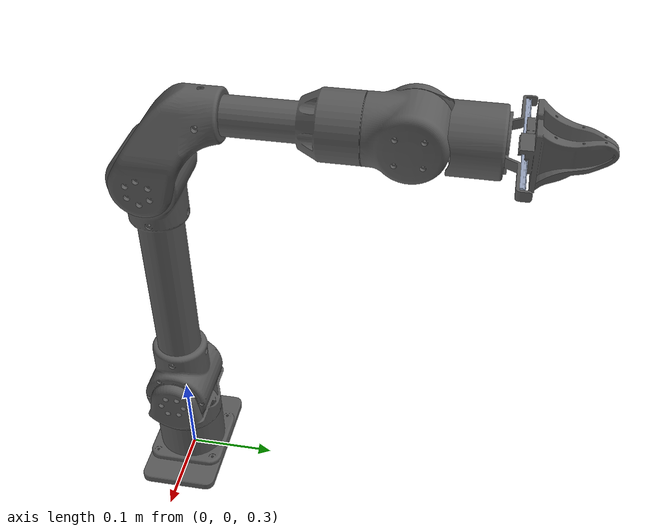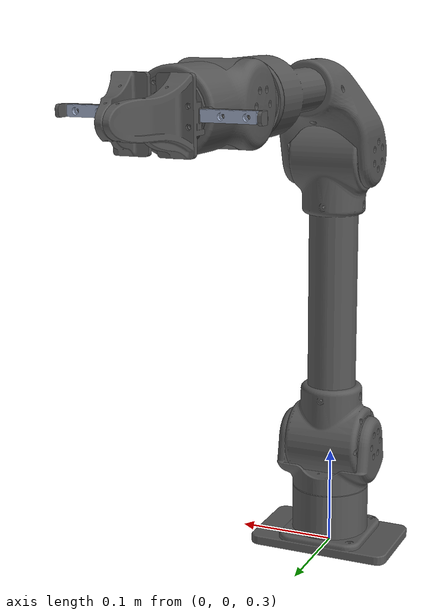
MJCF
<mujoco model="dm_arm">
  <compiler angle="radian" meshdir="../meshes" autolimits="true"/>

  <!-- Simulation settings -->
  <option gravity="0 0 -9.81" timestep="0.002" integrator="RK4"/>

  <!-- Common defaults to reduce repetition -->
  <default>
    <!-- Visual-only mesh: does not participate in collision -->
    <default class="visual_mesh">
      <geom type="mesh" contype="0" conaffinity="0" mass="0" density="0"/>
    </default>

    <!-- Collision mesh: participates in collision, kept transparent -->
    <default class="collision_mesh">
      <geom type="mesh" rgba="0 0 0 0" contype="1" conaffinity="1" mass="0" density="0"/>
    </default>

    <!-- Common hinge joint damping/armature baseline; override per joint as needed -->
    <default class="arm_hinge">
      <joint type="hinge" limited="true" range="-3.14 3.14"/>
    </default>
  </default>

  <asset>
    <!-- Robot meshes (STL). Keep names stable for geom references. -->
    <mesh name="base_link"     file="base_link.STL"/>
    <mesh name="link1"         file="link1.STL"/>
    <mesh name="link2"         file="link2.STL"/>
    <mesh name="link3"         file="link3.STL"/>
    <mesh name="link4"         file="link4.STL"/>
    <mesh name="link5"         file="link5.STL"/>
    <mesh name="link6"         file="link6.STL"/>
    <mesh name="dm_hand"       file="dm_hand.STL"/>
    <mesh name="dm_left_hand"  file="dm_left_hand.STL"/>
    <mesh name="dm_right_hand" file="dm_right_hand.STL"/>
  </asset>

  <worldbody>

    <!-- Base -->
    <body name="base_link" pos="0.0 0 0.3" quat="0 0 0 -1" >
      <inertial pos="0 0 0" mass="2.5" diaginertia="0.020 0.020 0.020"/>

      <geom class="visual_mesh"   mesh="base_link" rgba="0.35 0.35 0.35 1"/>
      <geom class="collision_mesh" name="col_base_link" mesh="base_link"/>

      <!-- Link1 -->
      <body name="link1" pos="0 0 0.065" quat="0.5 0.5 -0.5 -0.5">
        <inertial pos="0 0 0" mass="1.2" diaginertia="0.010 0.010 0.010"/>

        <joint class="arm_hinge" name="joint1" axis="0 1 0"
               damping="2" armature="0.01"/>

        <geom class="visual_mesh"    mesh="link1" rgba="0.35 0.35 0.35 1"/>

        <!-- Link2 -->
        <body name="link2" pos="0 0.05 0" quat="0.7071067811865462 0 0.7071067811865488 0">
          <inertial pos="0 0 0" mass="1.0" diaginertia="0.008 0.008 0.008"/>

          <joint class="arm_hinge" name="joint2" axis="1 0 0"
                 damping="2" armature="0.01"/>

          <geom class="visual_mesh"    mesh="link2" rgba="0.35 0.35 0.35 1"/>
          <geom class="collision_mesh" name="col_link2" mesh="link2"/>

          <!-- Link3 -->
          <body name="link3" pos="0 0.3 0"
                quat="5.26835673519653e-09 0.7071067811865462 5.268356735196549e-09 -0.7071067811865488">
            <inertial pos="0 0 0" mass="0.8" diaginertia="0.006 0.006 0.006"/>

            <joint class="arm_hinge" name="joint3" axis="0 0 -1"
                   damping="1.5" armature="0.008"/>

            <geom class="visual_mesh"    mesh="link3" rgba="0.35 0.35 0.35 1"/>
            <geom class="collision_mesh" name="col_link3" mesh="link3"/>

            <!-- Link4 -->
            <body name="link4" pos="-0.262 -0.068 0" quat="-3.673205103346574e-06 -0.9999999999932537 0 0">
              <inertial pos="0 0 0" mass="0.6" diaginertia="0.004 0.004 0.004"/>

              <joint class="arm_hinge" name="joint4" axis="-1 0 0"
                     damping="1.0" armature="0.006"/>

              <geom class="visual_mesh"    mesh="link4" rgba="0.35 0.35 0.35 1"/>
              <geom class="collision_mesh" name="col_link4" mesh="link4"/>

              <!-- Link5 -->
              <body name="link5" pos="0 0 0" quat="-3.673205103346574e-06 0 0 0.9999999999932537">
                <inertial pos="0 0 0" mass="0.5" diaginertia="0.003 0.003 0.003"/>

                <joint class="arm_hinge" name="joint5" axis="0 0 1"
                       damping="0.8" armature="0.005"/>

                <geom class="visual_mesh"    mesh="link5" rgba="0.35 0.35 0.35 1"/>
                <geom class="collision_mesh" name="col_link5" mesh="link5"/>

                <!-- Link6 -->
                <body name="link6" pos="0.085 0 -0.002"
                      quat="0.7071067811901252 -1.2986741185772033e-06 0.7071067811805847 -1.2986741186327144e-06">
                  <inertial pos="0 0 0" mass="0.4" diaginertia="0.002 0.002 0.002"/>

                  <joint class="arm_hinge" name="joint6" axis="0 0 1"
                         damping="0.5" armature="0.004"/>

                  <geom class="visual_mesh"    mesh="link6" rgba="0.35 0.35 0.35 1"/>
                  <geom class="collision_mesh" name="col_link6" mesh="link6"/>

                  <!-- Hand base (mount) -->
                  <body name="dm_hand" pos="-0.0775 -0.0045 0.02"
                        quat="0.4999981633974483 0.49999999999662686 0.5000018366025516 0.49999999999662686">
                    <inertial pos="0 0 0" mass="0.3" diaginertia="0.0015 0.0015 0.0015"/>

                    <geom class="visual_mesh"    mesh="dm_hand" rgba="0.6 0.65 0.75 1"/>
                    <geom class="collision_mesh" name="col_dm_hand" mesh="dm_hand"/>

                    <!-- Right jaw -->
                    <body name="dm_right_hand" pos="0.0044 -0.0083 0.059139"
                          quat="1.3492435731251315e-11 3.6732051033217936e-06 -0.9999999999865075 -3.6732051033217936e-06">
                      <inertial pos="0 0 0" mass="0.15" diaginertia="0.0006 0.0006 0.0006"/>

                      <joint name="dm_right_joint" type="slide" axis="0 0 1"
                             limited="true" range="0 0.045" damping="5"/>

                      <geom class="visual_mesh"    mesh="dm_right_hand" rgba="0.35 0.35 0.35 1"/>
                      <geom class="collision_mesh" name="col_dm_right_hand" mesh="dm_right_hand"/>
                    </body>

                    <!-- Left jaw (moves opposite direction via equality constraint) -->
                    <body name="dm_left_hand" pos="0.0044 -0.0083 0.095861">
                      <inertial pos="0 0 0" mass="0.15" diaginertia="0.0006 0.0006 0.0006"/>

                      <joint name="dm_left_joint" type="slide" axis="0 0 -1"
                             limited="true" range="-0.045 0" damping="5"/>

                      <geom class="visual_mesh"    mesh="dm_left_hand" rgba="0.35 0.35 0.35 1"/>
                      <geom class="collision_mesh" name="col_dm_left_hand" mesh="dm_left_hand"/>
                    </body>

                  </body>
                </body>
              </body>
            </body>
          </body>
        </body>
      </body>
    </body>
  </worldbody>

  <!--
    Gripper coupling:
    dm_left_joint = - dm_right_joint (via polynomial equality)
    This ensures symmetric opening/closing with a single actuator if desired.
  -->
  <equality>
    <joint joint1="dm_left_joint" joint2="dm_right_joint" polycoef="0 -1 0 0 0"/>
  </equality>

<actuator>
    <!-- Arm joints: position actuators (PD-like) -->
    <position name="j1_pos" joint="joint1" kp="40" kv="8"
              ctrllimited="true" ctrlrange="-3.14 3.14"/>
    <position name="j2_pos" joint="joint2" kp="40"  kv="8"
              ctrllimited="true" ctrlrange="-1.57 1.57"/>
    <position name="j3_pos" joint="joint3" kp="40"  kv="8"
              ctrllimited="true" ctrlrange="-1.57 1.57"/>
    <position name="j4_pos" joint="joint4" kp="20"  kv="5"
              ctrllimited="true" ctrlrange="-3.14 3.14"/>
    <position name="j5_pos" joint="joint5" kp="20"  kv="5"
              ctrllimited="true" ctrlrange="-1.57 1.57"/>
    <position name="j6_pos" joint="joint6" kp="20"  kv="5"
              ctrllimited="true" ctrlrange="-3.14 3.14"/>

    <!-- 优化后的夹爪位置控制 -->
    <position name="gripper_pos" joint="dm_right_joint" kp="20" kv="5"
              ctrllimited="true" ctrlrange="0 0.045"/> <!-- 更新为合适的最大开合范围 -->
</actuator>

<!-- 夹爪通过 `equality` 约束联动，保持对称运动 -->
<equality>
  <joint joint1="dm_left_joint" joint2="dm_right_joint" polycoef="0 -1 0 0 0"/>
</equality>

</mujoco>
